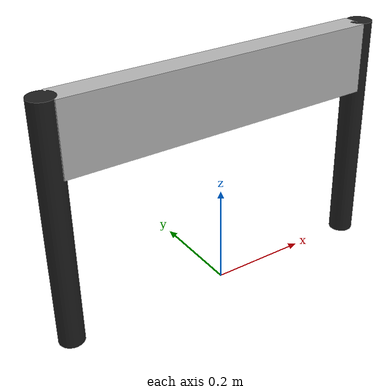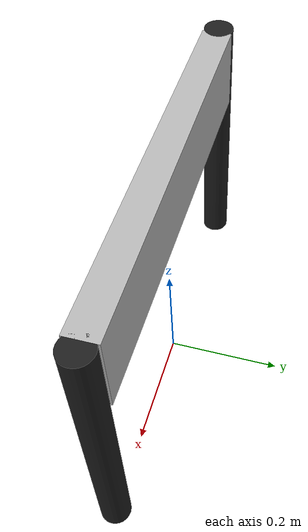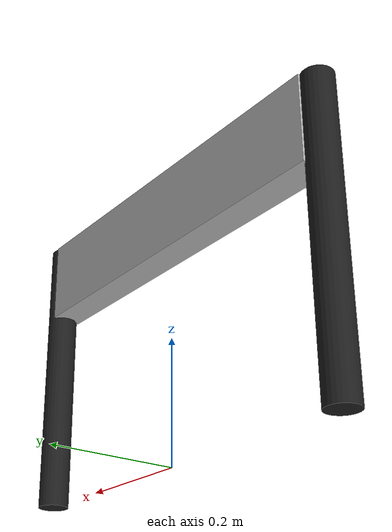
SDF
<?xml version="1.0"?>
<sdf version="1.6">
  <model name="traffic_light">
    <static>true</static>

    <link name="panel">
      <pose>0 0 0.41 0 0 0</pose>
      <collision name="collision"><geometry><box><size>0.64 0.05 0.14</size></box></geometry></collision>
      <visual name="visual">
        <geometry><box><size>0.64 0.05 0.14</size></box></geometry>
        <material><script>
            <uri>model://traffic_light/materials/scripts/traffic_light.material</uri>
            <name>traffic_light</name>
          </script></material>
      </visual>
    </link>
    <link name="leg_left">
      <pose>-0.3325 0 0.24 0 0 0</pose>
      <collision name="collision"><geometry><cylinder><radius>0.025</radius><length>0.48</length></cylinder></geometry></collision>
      <visual name="visual">
        <geometry><cylinder><radius>0.025</radius><length>0.48</length></cylinder></geometry>
        <material><script><uri>file://media/materials/scripts/gazebo.material</uri><name>Gazebo/Black</name></script></material>
      </visual>
    </link>
    <link name="leg_right">
      <pose>0.3325 0 0.24 0 0 0</pose>
      <collision name="collision"><geometry><cylinder><radius>0.025</radius><length>0.48</length></cylinder></geometry></collision>
      <visual name="visual">
        <geometry><cylinder><radius>0.025</radius><length>0.48</length></cylinder></geometry>
        <material><script><uri>file://media/materials/scripts/gazebo.material</uri><name>Gazebo/Black</name></script></material>
      </visual>
    </link>
  </model>
</sdf>
